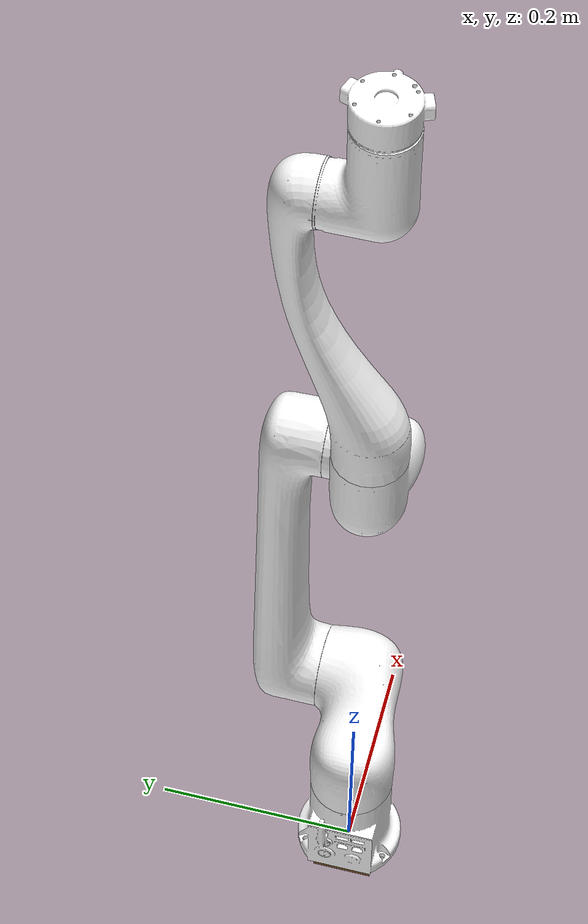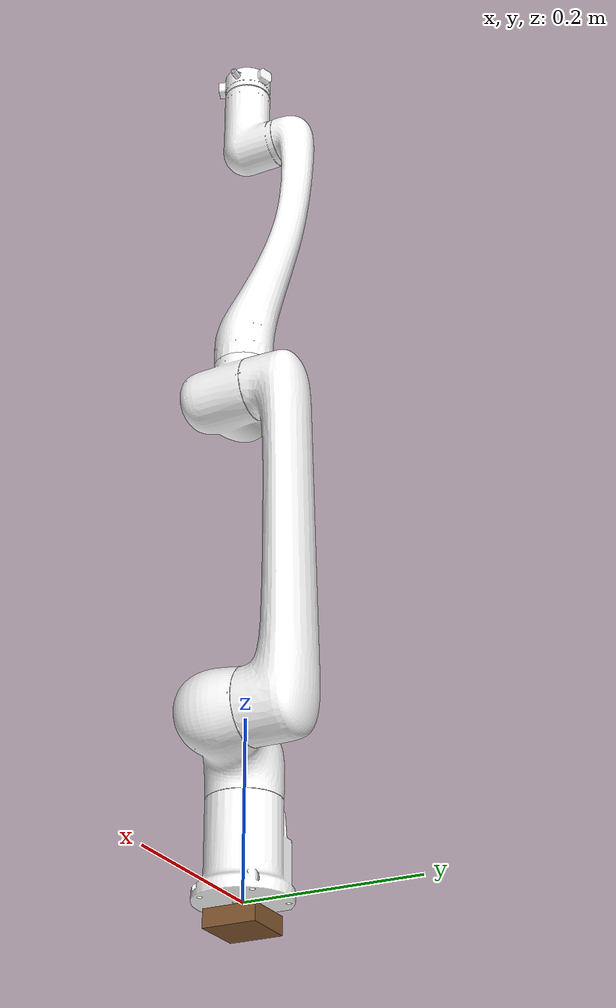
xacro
<?xml version="1.0" encoding="utf-8"?>
<robot name="rml_63_description" xmlns:xacro="http://www.ros.org/wiki/xacro">
<xacro:include filename="$(find rm_description)/urdf/RML63/rml_63.transmission.xacro"/>
<xacro:include filename="$(find rm_description)/urdf/RML63/rml_63.gazebo.xacro"/>
<!-- Inertial matrix -->
<xacro:macro name="inertial_matrix" params="mass">
<inertial>
    <mass value="${mass}" />
    <inertia ixx="1.0" ixy="0.0" ixz="0.0" iyy="0.5" iyz="0.0" izz="1.0" />
</inertial>
</xacro:macro>
 <xacro:macro name="Box_inertial_matrix" params="m l w h">
       <inertial>
               <mass value="${m}" />
               <inertia ixx="${m*(h*h + l*l)/12}" ixy = "0" ixz = "0"
                   iyy="${m*(w*w + l*l)/12}" iyz= "0"
                   izz="${m*(w*w + h*h)/12}" />
       </inertial>
  </xacro:macro>
    <link name="dummy">
    </link>
    <joint name="dummy_joint" type="fixed">
    <origin xyz="0 0 0" rpy="0 0 3.14" />
      <parent link="dummy" />
      <child link="base_link" />
    </joint>
    <!-- ///////////////////////////////////////   bottom_joint   ////////////////////////////////////////// -->
    <joint name="bottom_joint" type="fixed">
        <origin xyz="0 0 0" rpy="0 0 0" />
        <parent link="base_link"/>
        <child link="bottom_link"/>
    </joint>
    <link name="bottom_link">
        <visual>
              <origin xyz=" 0 0 -0.02"  rpy="0 0 0"/>
                  <geometry>
                       <box size="0.06 0.06 0.02" />
                  </geometry>
              <material name="Brown" />
        </visual>
        <collision>
            <origin xyz=" 0 0 -0.02"  rpy="0 0 0"/>
            <geometry>
                <box size="0.06 0.06 0.02" />
            </geometry>
        </collision>
        <xacro:Box_inertial_matrix m="500" l="1" w="1" h="0.02"/>
    </link>
  <link
    name="base_link">
    <inertial>
      <origin
        xyz="0.0014231 -0.00010178 0.050147"
        rpy="0 0 0" />
      <mass
        value="0.66171" />
      <inertia
        ixx="0.00099443"
        ixy="3.282E-06"
        ixz="-9.9964E-06"
        iyy="0.0010144"
        iyz="1.2811E-06"
        izz="0.00067929" />
    </inertial>
    <visual>
      <origin
        xyz="0 0 0"
        rpy="0 0 0" />
      <geometry>
        <mesh
          filename="package://rm_description/meshes/RML63/base_link.STL" />
      </geometry>
      <material
        name="">
        <color
          rgba="1 1 1 1" />
      </material>
    </visual>
    <collision>
      <origin
        xyz="0 0 0"
        rpy="0 0 0" />
      <geometry>
        <mesh
          filename="package://rm_description/meshes/RML63/base_link.STL" />
      </geometry>
    </collision>
  </link>
  <link
    name="link1">
    <inertial>
      <origin
        xyz="-0.043281 -0.0072256 -0.012694"
        rpy="0 0 0" />
      <mass
        value="0.89496" />
      <inertia
        ixx="0.0010156"
        ixy="-0.00026764"
        ixz="0.00045014"
        iyy="0.0024107"
        iyz="6.0996E-05"
        izz="0.0022755" />
    </inertial>
    <visual>
      <origin
        xyz="0 0 0"
        rpy="0 0 0" />
      <geometry>
        <mesh
          filename="package://rm_description/meshes/RML63/link1.STL" />
      </geometry>
      <material
        name="">
        <color
          rgba="1 1 1 1" />
      </material>
    </visual>
    <collision>
      <origin
        xyz="0 0 0"
        rpy="0 0 0" />
      <geometry>
        <mesh
          filename="package://rm_description/meshes/RML63/link1.STL" />
      </geometry>
    </collision>
  </link>
  <joint
    name="joint1"
    type="revolute">
    <origin
      xyz="0 0 0.172"
      rpy="0 0 0" />
    <parent
      link="base_link" />
    <child
      link="link1" />
    <axis
      xyz="0 0 1" />
    <limit
      lower="-3.106"
      upper="3.106"
      effort="100"
      velocity="1" />
    <dynamics
      damping="50"
      friction="1" />
  </joint>
  <link
    name="link2">
    <inertial>
      <origin
        xyz="0.17388 3.639E-07 -0.089966"
        rpy="0 0 0" />
      <mass
        value="1.5679" />
      <inertia
        ixx="0.0010615"
        ixy="-7.3371E-08"
        ixz="-0.00025488"
        iyy="0.03035"
        iyz="-1.6148E-08"
        izz="0.030485" />
    </inertial>
    <visual>
      <origin
        xyz="0 0 0"
        rpy="0 0 0" />
      <geometry>
        <mesh
          filename="package://rm_description/meshes/RML63/link2.STL" />
      </geometry>
      <material
        name="">
        <color
          rgba="1 1 1 1" />
      </material>
    </visual>
    <collision>
      <origin
        xyz="0 0 0"
        rpy="0 0 0" />
      <geometry>
        <mesh
          filename="package://rm_description/meshes/RML63/link2.STL" />
      </geometry>
    </collision>
  </link>
  <joint
    name="joint2"
    type="revolute">
    <origin
      xyz="-0.086 0 0"
      rpy="0 -1.5708 -1.5708" />
    <parent
      link="link1" />
    <child
      link="link2" />
    <axis
      xyz="0 0 1" />
    <limit
      lower="-3.106"
      upper="3.106"
      effort="100"
      velocity="1" />
    <dynamics
      damping="50"
      friction="1" />
  </joint>
  <link
    name="link3">
    <inertial>
      <origin
        xyz="0.035968 -0.020568 -0.0048526"
        rpy="0 0 0" />
      <mass
        value="0.67539" />
      <inertia
        ixx="0.00091144"
        ixy="0.00043238"
        ixz="-0.0001205"
        iyy="0.0012128"
        iyz="6.6376E-05"
        izz="0.0015231" />
    </inertial>
    <visual>
      <origin
        xyz="0 0 0"
        rpy="0 0 0" />
      <geometry>
        <mesh
          filename="package://rm_description/meshes/RML63/link3.STL" />
      </geometry>
      <material
        name="">
        <color
          rgba="1 1 1 1" />
      </material>
    </visual>
    <collision>
      <origin
        xyz="0 0 0"
        rpy="0 0 0" />
      <geometry>
        <mesh
          filename="package://rm_description/meshes/RML63/link3.STL" />
      </geometry>
    </collision>
  </link>
  <joint
    name="joint3"
    type="revolute">
    <origin
      xyz="0.38 0 -0.00030011"
      rpy="0 0 1.5708" />
    <parent
      link="link2" />
    <child
      link="link3" />
    <axis
      xyz="0 0 1" />
    <limit
      lower="-3.106"
      upper="2.53"
      effort="100"
      velocity="1" />
    <dynamics
      damping="50"
      friction="1" />
  </joint>
  <link
    name="link4">
    <inertial>
      <origin
        xyz="-2.0098E-06 -0.033559 -0.18296"
        rpy="0 0 0" />
      <mass
        value="0.69687" />
      <inertia
        ixx="0.0085449"
        ixy="4.7796E-08"
        ixz="-1.0943E-08"
        iyy="0.0080043"
        iyz="0.0020032"
        izz="0.00084216" />
    </inertial>
    <visual>
      <origin
        xyz="0 0 0"
        rpy="0 0 0" />
      <geometry>
        <mesh
          filename="package://rm_description/meshes/RML63/link4.STL" />
      </geometry>
      <material
        name="">
        <color
          rgba="1 1 1 1" />
      </material>
    </visual>
    <collision>
      <origin
        xyz="0 0 0"
        rpy="0 0 0" />
      <geometry>
        <mesh
          filename="package://rm_description/meshes/RML63/link4.STL" />
      </geometry>
    </collision>
  </link>
  <joint
    name="joint4"
    type="revolute">
    <origin
      xyz="0.069 -0.405 0.00029958"
      rpy="1.5708 0 0" />
    <parent
      link="link3" />
    <child
      link="link4" />
    <axis
      xyz="0 0 1" />
    <limit
      lower="-3.106"
      upper="3.106"
      effort="100"
      velocity="1" />
    <dynamics
      damping="50"
      friction="1" />
  </joint>
  <link
    name="link5">
    <inertial>
      <origin
        xyz="-1.5679E-07 0.02862 -0.0062118"
        rpy="0 0 0" />
      <mass
        value="0.34759" />
      <inertia
        ixx="0.00049457"
        ixy="-1.0235E-08"
        ixz="-1.8949E-09"
        iyy="0.00019706"
        iyz="-6.3439E-05"
        izz="0.00044565" />
    </inertial>
    <visual>
      <origin
        xyz="0 0 0"
        rpy="0 0 0" />
      <geometry>
        <mesh
          filename="package://rm_description/meshes/RML63/link5.STL" />
      </geometry>
      <material
        name="">
        <color
          rgba="1 1 1 1" />
      </material>
    </visual>
    <collision>
      <origin
        xyz="0 0 0"
        rpy="0 0 0" />
      <geometry>
        <mesh
          filename="package://rm_description/meshes/RML63/link5.STL" />
      </geometry>
    </collision>
  </link>
  <joint
    name="joint5"
    type="revolute">
    <origin
      xyz="0 0 0"
      rpy="1.5708 0 3.1416" />
    <parent
      link="link4" />
    <child
      link="link5" />
    <axis
      xyz="0 0 1" />
    <limit
      lower="-3.106"
      upper="3.106"
      effort="100"
      velocity="1" />
    <dynamics
      damping="50"
      friction="1" />
  </joint>
  <link
    name="link6">
    <inertial>
      <origin
        xyz="-0.0006163 0.00034085 -0.01449"
        rpy="0 0 0" />
      <mass
        value="0.077104" />
      <inertia
        ixx="2.2947E-05"
        ixy="-1.3061E-06"
        ixz="1.1202E-07"
        iyy="2.1475E-05"
        iyz="-5.1151E-08"
        izz="3.4243E-05" />
    </inertial>
    <visual>
      <origin
        xyz="0 0 0"
        rpy="0 0 0" />
      <geometry>
        <mesh
          filename="package://rm_description/meshes/RML63/link6.STL" />
      </geometry>
      <material
        name="">
        <color
          rgba="1 1 1 1" />
      </material>
    </visual>
    <collision>
      <origin
        xyz="0 0 0"
        rpy="0 0 0" />
      <geometry>
        <mesh
          filename="package://rm_description/meshes/RML63/link6.STL" />
      </geometry>
    </collision>
  </link>
  <joint
    name="joint6"
    type="revolute">
    <origin
      xyz="0 0.115 0"
      rpy="1.5708 0 3.1416" />
    <parent
      link="link5" />
    <child
      link="link6" />
    <axis
      xyz="0 0 1" />
    <limit
      lower="-6.28"
      upper="6.28"
      effort="100"
      velocity="1" />
    <dynamics
      damping="50"
      friction="1" />
  </joint>

    <!-- Transmissions for ROS Control -->
    <xacro:macro name="transmission_block" params="joint_name">
        <transmission name="tran1">
            <type>transmission_interface/SimpleTransmission</type>
            <joint name="${joint_name}">
                <hardwareInterface>hardware_interface/PositionJointInterface</hardwareInterface>
            </joint>
            <actuator name="motor1">
                <hardwareInterface>hardware_interface/PositionJointInterface</hardwareInterface>
                <mechanicalReduction>1</mechanicalReduction>
            </actuator>
        </transmission>
    </xacro:macro>

    <xacro:transmission_block joint_name="joint1"/>
    <xacro:transmission_block joint_name="joint2"/>
    <xacro:transmission_block joint_name="joint3"/>
    <xacro:transmission_block joint_name="joint4"/>
    <xacro:transmission_block joint_name="joint5"/>
    <xacro:transmission_block joint_name="joint6"/>

    <!-- ros_control plugin -->
    <gazebo>
        <plugin name="gazebo_ros_control" filename="libgazebo_ros_control.so">
            <robotNamespace>/arm</robotNamespace>
            <robotSimType>gazebo_ros_control/DefaultRobotHWSim</robotSimType>
            <legacyModeNS>true</legacyModeNS>
        </plugin>
    </gazebo>
</robot>
